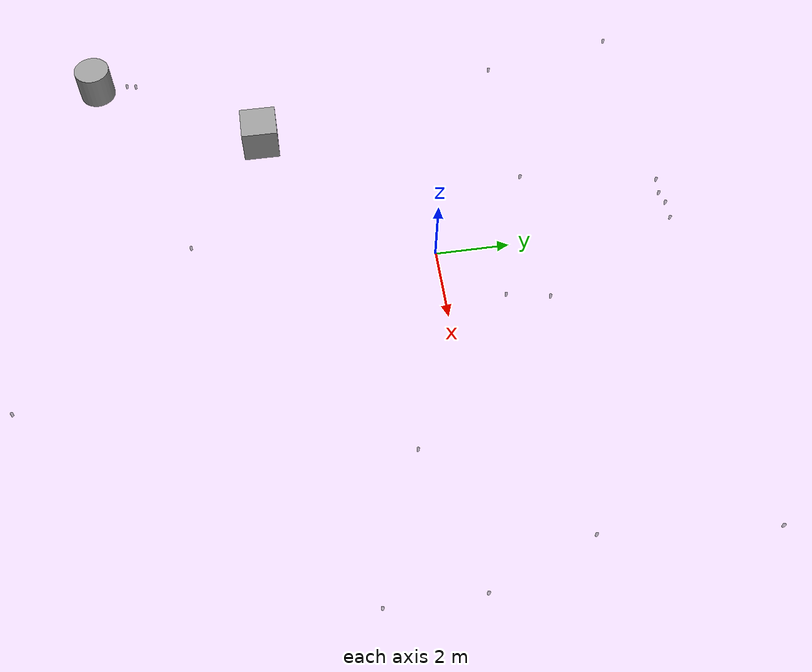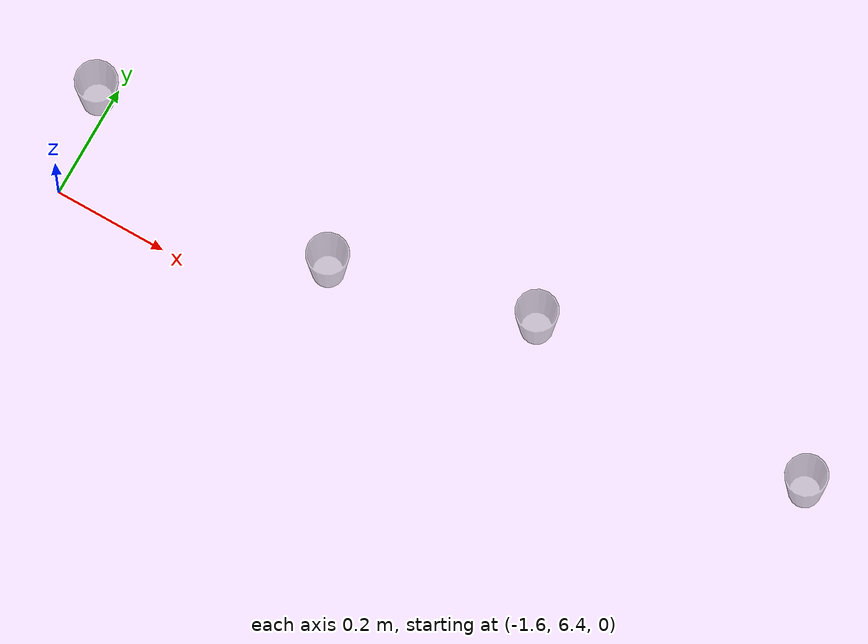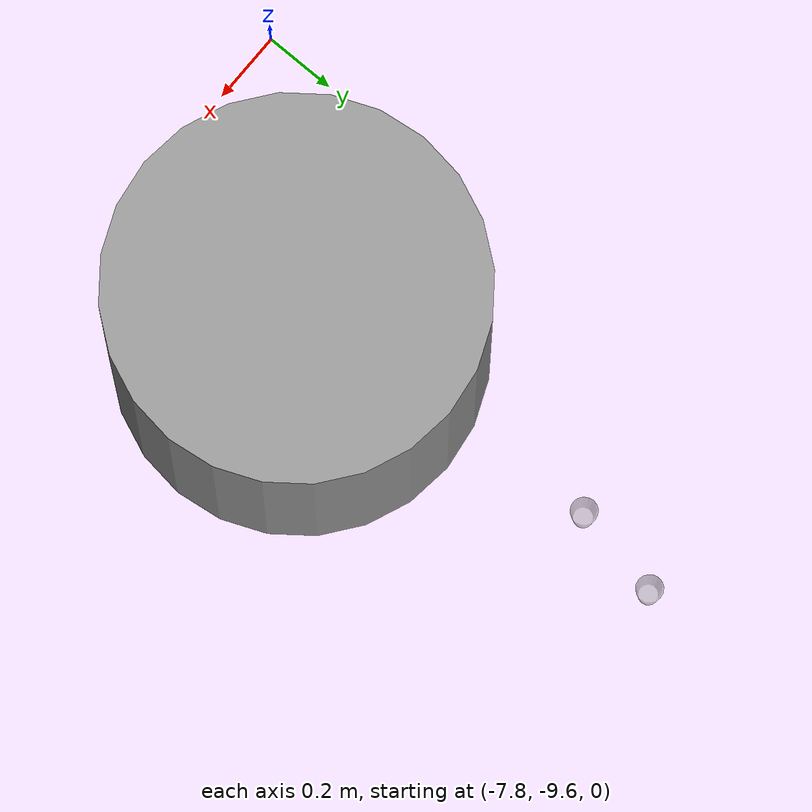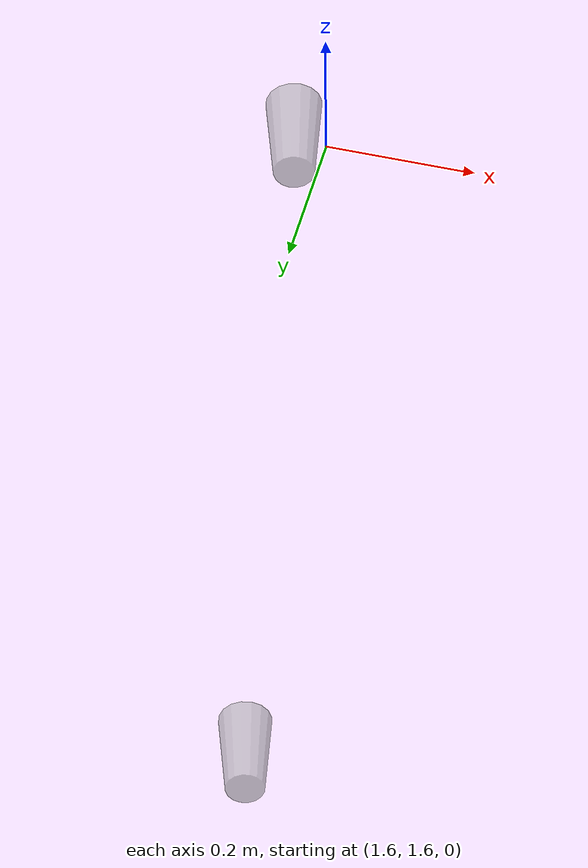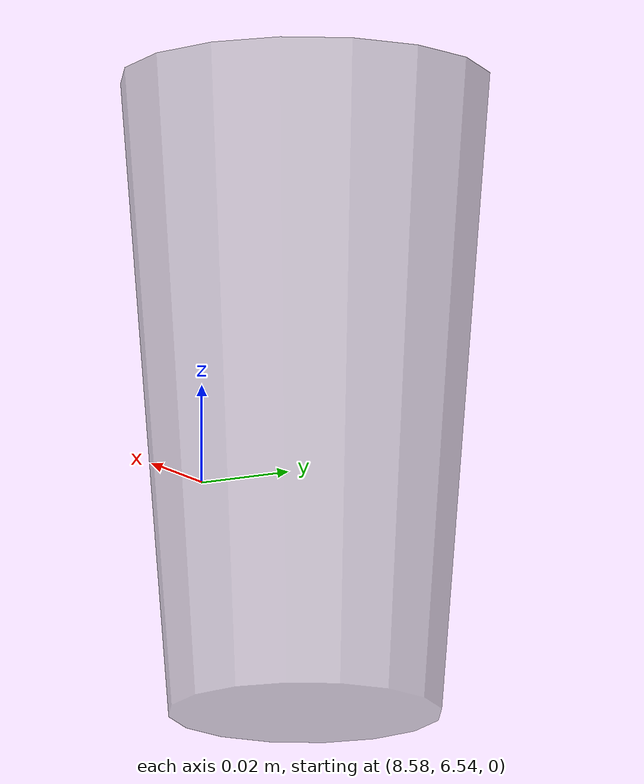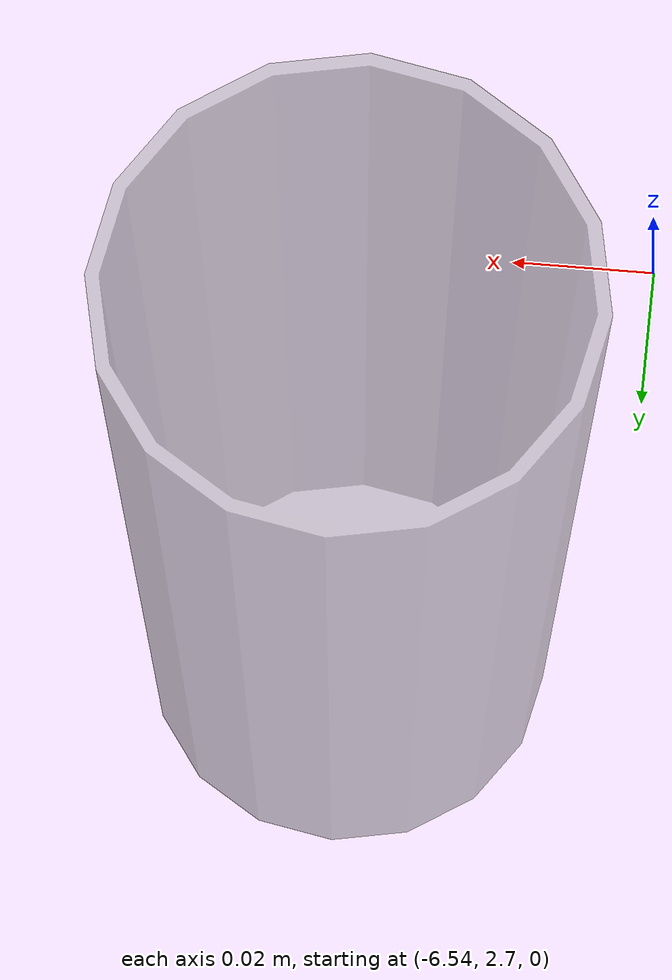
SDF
<?xml version='1.0'?>
<sdf version='1.7'>
  <model name='plastic_cups_added'>
    <link name='link_0'>
      <inertial>
        <mass>1</mass>
        <inertia>
          <ixx>0.166667</ixx>
          <ixy>0</ixy>
          <ixz>0</ixz>
          <iyy>0.166667</iyy>
          <iyz>0</iyz>
          <izz>0.166667</izz>
        </inertia>
      </inertial>
      <pose>-4.53638 -4.34206 0.45 0 -0 0</pose>
      <visual name='visual_one'>
        <pose>0 0 0 0 -0 0</pose>
        <geometry>
          <box>
            <size>1 1 1</size>
          </box>
        </geometry>
        <material>
          <lighting>1</lighting>
          <script>
            <uri>file://media/materials/scripts/gazebo.material</uri>
            <name>Gazebo/Grey</name>
          </script>
          <shader type='pixel'/>
        </material>
        <transparency>0</transparency>
        <cast_shadows>1</cast_shadows>
      </visual>
      <collision name='collision_one'>
        <laser_retro>0</laser_retro>
        <max_contacts>10</max_contacts>
        <pose>0 0 0 0 -0 0</pose>
        <geometry>
          <box>
            <size>1 1 1</size>
          </box>
        </geometry>
        <surface>
          <friction>
            <ode>
              <mu>1</mu>
              <mu2>1</mu2>
              <fdir1>0 0 0</fdir1>
              <slip1>0</slip1>
              <slip2>0</slip2>
            </ode>
            <torsional>
              <coefficient>1</coefficient>
              <patch_radius>0</patch_radius>
              <surface_radius>0</surface_radius>
              <use_patch_radius>1</use_patch_radius>
              <ode>
                <slip>0</slip>
              </ode>
            </torsional>
          </friction>
          <bounce>
            <restitution_coefficient>0</restitution_coefficient>
            <threshold>1e+06</threshold>
          </bounce>
          <contact>
            <collide_without_contact>0</collide_without_contact>
            <collide_without_contact_bitmask>1</collide_without_contact_bitmask>
            <collide_bitmask>1</collide_bitmask>
            <ode>
              <soft_cfm>0</soft_cfm>
              <soft_erp>0.2</soft_erp>
              <kp>1e+13</kp>
              <kd>1</kd>
              <max_vel>0.01</max_vel>
              <min_depth>0</min_depth>
            </ode>
            <bullet>
              <split_impulse>1</split_impulse>
              <split_impulse_penetration_threshold>-0.01</split_impulse_penetration_threshold>
              <soft_cfm>0</soft_cfm>
              <soft_erp>0.2</soft_erp>
              <kp>1e+13</kp>
              <kd>1</kd>
            </bullet>
          </contact>
        </surface>
      </collision>
    </link>
    <link name='link_1'>
      <inertial>
        <mass>1</mass>
        <inertia>
          <ixx>0.145833</ixx>
          <ixy>0</ixy>
          <ixz>0</ixz>
          <iyy>0.145833</iyy>
          <iyz>0</iyz>
          <izz>0.125</izz>
        </inertia>
      </inertial>
      <pose>-7.22742 -9.02066 0.45 0 -0 0</pose>
      <visual name='visual__1'>
        <pose>0 0 0 0 -0 0</pose>
        <geometry>
          <cylinder>
            <radius>0.5</radius>
            <length>1</length>
          </cylinder>
        </geometry>
        <material>
          <lighting>1</lighting>
          <script>
            <uri>file://media/materials/scripts/gazebo.material</uri>
            <name>Gazebo/Grey</name>
          </script>
          <shader type='pixel'/>
        </material>
        <transparency>0</transparency>
        <cast_shadows>1</cast_shadows>
      </visual>
      <collision name='collision__1'>
        <laser_retro>0</laser_retro>
        <max_contacts>10</max_contacts>
        <pose>0 0 0 0 -0 0</pose>
        <geometry>
          <cylinder>
            <radius>0.5</radius>
            <length>1</length>
          </cylinder>
        </geometry>
        <surface>
          <friction>
            <ode>
              <mu>1</mu>
              <mu2>1</mu2>
              <fdir1>0 0 0</fdir1>
              <slip1>0</slip1>
              <slip2>0</slip2>
            </ode>
            <torsional>
              <coefficient>1</coefficient>
              <patch_radius>0</patch_radius>
              <surface_radius>0</surface_radius>
              <use_patch_radius>1</use_patch_radius>
              <ode>
                <slip>0</slip>
              </ode>
            </torsional>
          </friction>
          <bounce>
            <restitution_coefficient>0</restitution_coefficient>
            <threshold>1e+06</threshold>
          </bounce>
          <contact>
            <collide_without_contact>0</collide_without_contact>
            <collide_without_contact_bitmask>1</collide_without_contact_bitmask>
            <collide_bitmask>1</collide_bitmask>
            <ode>
              <soft_cfm>0</soft_cfm>
              <soft_erp>0.2</soft_erp>
              <kp>1e+13</kp>
              <kd>1</kd>
              <max_vel>0.01</max_vel>
              <min_depth>0</min_depth>
            </ode>
            <bullet>
              <split_impulse>1</split_impulse>
              <split_impulse_penetration_threshold>-0.01</split_impulse_penetration_threshold>
              <soft_cfm>0</soft_cfm>
              <soft_erp>0.2</soft_erp>
              <kp>1e+13</kp>
              <kd>1</kd>
            </bullet>
          </contact>
        </surface>
      </collision>
    </link>
    <model name='plastic_cup'>
      <link name='link_one'>
        <pose>0 0 0.065 0 -0 0</pose>
        <inertial>
          <mass>0.0599</mass>
          <inertia>
            <ixx>0.000302896</ixx>
            <ixy>0</ixy>
            <ixz>0</ixz>
            <iyy>0.000302896</iyy>
            <iyz>0</iyz>
            <izz>3.28764e-05</izz>
          </inertia>
        </inertial>
        <collision name='collision__2'>
          <geometry>
            <mesh>
              <uri>model://plastic_cup/meshes/plastic_cup.dae</uri>
            </mesh>
          </geometry>
          <surface>
            <contact>
              <poissons_ratio>0.35</poissons_ratio>
              <elastic_modulus>3.10264e+09</elastic_modulus>
              <ode>
                <kp>100000</kp>
                <kd>100</kd>
                <max_vel>100</max_vel>
                <min_depth>0.001</min_depth>
              </ode>
            </contact>
            <friction>
              <torsional>
                <coefficient>1</coefficient>
                <use_patch_radius>0</use_patch_radius>
                <surface_radius>0.01</surface_radius>
              </torsional>
            </friction>
          </surface>
        </collision>
        <visual name='visual__2'>
          <geometry>
            <mesh>
              <uri>model://plastic_cup/meshes/plastic_cup.dae</uri>
            </mesh>
          </geometry>
          <material>
            <script>
              <uri>file://media/materials/scripts/gazebo.material</uri>
              <name>Gazebo/GreyTransparent</name>
            </script>
          </material>
        </visual>
      </link>
      <pose>-7.35518 -8.17299 -0.05 0 -0 0</pose>
    </model>
    <model name='plastic_cup_0'>
      <link name='link__1'>
        <pose>0 0 0.065 0 -0 0</pose>
        <inertial>
          <mass>0.0599</mass>
          <inertia>
            <ixx>0.000302896</ixx>
            <ixy>0</ixy>
            <ixz>0</ixz>
            <iyy>0.000302896</iyy>
            <iyz>0</iyz>
            <izz>3.28764e-05</izz>
          </inertia>
        </inertial>
        <collision name='collision__3'>
          <geometry>
            <mesh>
              <uri>model://plastic_cup/meshes/plastic_cup.dae</uri>
            </mesh>
          </geometry>
          <surface>
            <contact>
              <poissons_ratio>0.35</poissons_ratio>
              <elastic_modulus>3.10264e+09</elastic_modulus>
              <ode>
                <kp>100000</kp>
                <kd>100</kd>
                <max_vel>100</max_vel>
                <min_depth>0.001</min_depth>
              </ode>
            </contact>
            <friction>
              <torsional>
                <coefficient>1</coefficient>
                <use_patch_radius>0</use_patch_radius>
                <surface_radius>0.01</surface_radius>
              </torsional>
            </friction>
          </surface>
        </collision>
        <visual name='visual__3'>
          <geometry>
            <mesh>
              <uri>model://plastic_cup/meshes/plastic_cup.dae</uri>
            </mesh>
          </geometry>
          <material>
            <script>
              <uri>file://media/materials/scripts/gazebo.material</uri>
              <name>Gazebo/GreyTransparent</name>
            </script>
          </material>
        </visual>
      </link>
      <pose>-7.30776 -7.91282 -0.05 0 -0 0</pose>
    </model>
    <model name='plastic_cup_1'>
      <link name='link__2'>
        <pose>0 0 0.065 0 -0 0</pose>
        <inertial>
          <mass>0.0599</mass>
          <inertia>
            <ixx>0.000302896</ixx>
            <ixy>0</ixy>
            <ixz>0</ixz>
            <iyy>0.000302896</iyy>
            <iyz>0</iyz>
            <izz>3.28764e-05</izz>
          </inertia>
        </inertial>
        <collision name='collision__4'>
          <geometry>
            <mesh>
              <uri>model://plastic_cup/meshes/plastic_cup.dae</uri>
            </mesh>
          </geometry>
          <surface>
            <contact>
              <poissons_ratio>0.35</poissons_ratio>
              <elastic_modulus>3.10264e+09</elastic_modulus>
              <ode>
                <kp>100000</kp>
                <kd>100</kd>
                <max_vel>100</max_vel>
                <min_depth>0.001</min_depth>
              </ode>
            </contact>
            <friction>
              <torsional>
                <coefficient>1</coefficient>
                <use_patch_radius>0</use_patch_radius>
                <surface_radius>0.01</surface_radius>
              </torsional>
            </friction>
          </surface>
        </collision>
        <visual name='visual__4'>
          <geometry>
            <mesh>
              <uri>model://plastic_cup/meshes/plastic_cup.dae</uri>
            </mesh>
          </geometry>
          <material>
            <script>
              <uri>file://media/materials/scripts/gazebo.material</uri>
              <name>Gazebo/GreyTransparent</name>
            </script>
          </material>
        </visual>
      </link>
      <pose>-1.0894 -6.4977 -0.05 0 -0 0</pose>
    </model>
    <model name='plastic_cup_10'>
      <link name='link__3'>
        <pose>0 0 0.065 0 -0 0</pose>
        <inertial>
          <mass>0.0599</mass>
          <inertia>
            <ixx>0.000302896</ixx>
            <ixy>0</ixy>
            <ixz>0</ixz>
            <iyy>0.000302896</iyy>
            <iyz>0</iyz>
            <izz>3.28764e-05</izz>
          </inertia>
        </inertial>
        <collision name='collision__5'>
          <geometry>
            <mesh>
              <uri>model://plastic_cup/meshes/plastic_cup.dae</uri>
            </mesh>
          </geometry>
          <surface>
            <contact>
              <poissons_ratio>0.35</poissons_ratio>
              <elastic_modulus>3.10264e+09</elastic_modulus>
              <ode>
                <kp>100000</kp>
                <kd>100</kd>
                <max_vel>100</max_vel>
                <min_depth>0.001</min_depth>
              </ode>
            </contact>
            <friction>
              <torsional>
                <coefficient>1</coefficient>
                <use_patch_radius>0</use_patch_radius>
                <surface_radius>0.01</surface_radius>
              </torsional>
            </friction>
          </surface>
        </collision>
        <visual name='visual__5'>
          <geometry>
            <mesh>
              <uri>model://plastic_cup/meshes/plastic_cup.dae</uri>
            </mesh>
          </geometry>
          <material>
            <script>
              <uri>file://media/materials/scripts/gazebo.material</uri>
              <name>Gazebo/GreyTransparent</name>
            </script>
          </material>
        </visual>
      </link>
      <pose>-1.63094 6.5734 -0.05 0 -0 0</pose>
    </model>
    <model name='plastic_cup_11'>
      <link name='link__4'>
        <pose>0 0 0.065 0 -0 0</pose>
        <inertial>
          <mass>0.0599</mass>
          <inertia>
            <ixx>0.000302896</ixx>
            <ixy>0</ixy>
            <ixz>0</ixz>
            <iyy>0.000302896</iyy>
            <iyz>0</iyz>
            <izz>3.28764e-05</izz>
          </inertia>
        </inertial>
        <collision name='collision__6'>
          <geometry>
            <mesh>
              <uri>model://plastic_cup/meshes/plastic_cup.dae</uri>
            </mesh>
          </geometry>
          <surface>
            <contact>
              <poissons_ratio>0.35</poissons_ratio>
              <elastic_modulus>3.10264e+09</elastic_modulus>
              <ode>
                <kp>100000</kp>
                <kd>100</kd>
                <max_vel>100</max_vel>
                <min_depth>0.001</min_depth>
              </ode>
            </contact>
            <friction>
              <torsional>
                <coefficient>1</coefficient>
                <use_patch_radius>0</use_patch_radius>
                <surface_radius>0.01</surface_radius>
              </torsional>
            </friction>
          </surface>
        </collision>
        <visual name='visual__6'>
          <geometry>
            <mesh>
              <uri>model://plastic_cup/meshes/plastic_cup.dae</uri>
            </mesh>
          </geometry>
          <material>
            <script>
              <uri>file://media/materials/scripts/gazebo.material</uri>
              <name>Gazebo/GreyTransparent</name>
            </script>
          </material>
        </visual>
      </link>
      <pose>-7.22075 6.50788 -0.05 0 -0 0</pose>
    </model>
    <model name='plastic_cup_12'>
      <link name='link__5'>
        <pose>0 0 0.065 0 -0 0</pose>
        <inertial>
          <mass>0.0599</mass>
          <inertia>
            <ixx>0.000302896</ixx>
            <ixy>0</ixy>
            <ixz>0</ixz>
            <iyy>0.000302896</iyy>
            <iyz>0</iyz>
            <izz>3.28764e-05</izz>
          </inertia>
        </inertial>
        <collision name='collision__7'>
          <geometry>
            <mesh>
              <uri>model://plastic_cup/meshes/plastic_cup.dae</uri>
            </mesh>
          </geometry>
          <surface>
            <contact>
              <poissons_ratio>0.35</poissons_ratio>
              <elastic_modulus>3.10264e+09</elastic_modulus>
              <ode>
                <kp>100000</kp>
                <kd>100</kd>
                <max_vel>100</max_vel>
                <min_depth>0.001</min_depth>
              </ode>
            </contact>
            <friction>
              <torsional>
                <coefficient>1</coefficient>
                <use_patch_radius>0</use_patch_radius>
                <surface_radius>0.01</surface_radius>
              </torsional>
            </friction>
          </surface>
        </collision>
        <visual name='visual__7'>
          <geometry>
            <mesh>
              <uri>model://plastic_cup/meshes/plastic_cup.dae</uri>
            </mesh>
          </geometry>
          <material>
            <script>
              <uri>file://media/materials/scripts/gazebo.material</uri>
              <name>Gazebo/GreyTransparent</name>
            </script>
          </material>
        </visual>
      </link>
      <pose>-6.50018 2.73036 -0.05 0 -0 0</pose>
    </model>
    <model name='plastic_cup_13'>
      <link name='link__6'>
        <pose>0 0 0.065 0 -0 0</pose>
        <inertial>
          <mass>0.0599</mass>
          <inertia>
            <ixx>0.000302896</ixx>
            <ixy>0</ixy>
            <ixz>0</ixz>
            <iyy>0.000302896</iyy>
            <iyz>0</iyz>
            <izz>3.28764e-05</izz>
          </inertia>
        </inertial>
        <collision name='collision__8'>
          <geometry>
            <mesh>
              <uri>model://plastic_cup/meshes/plastic_cup.dae</uri>
            </mesh>
          </geometry>
          <surface>
            <contact>
              <poissons_ratio>0.35</poissons_ratio>
              <elastic_modulus>3.10264e+09</elastic_modulus>
              <ode>
                <kp>100000</kp>
                <kd>100</kd>
                <max_vel>100</max_vel>
                <min_depth>0.001</min_depth>
              </ode>
            </contact>
            <friction>
              <torsional>
                <coefficient>1</coefficient>
                <use_patch_radius>0</use_patch_radius>
                <surface_radius>0.01</surface_radius>
              </torsional>
            </friction>
          </surface>
        </collision>
        <visual name='visual__8'>
          <geometry>
            <mesh>
              <uri>model://plastic_cup/meshes/plastic_cup.dae</uri>
            </mesh>
          </geometry>
          <material>
            <script>
              <uri>file://media/materials/scripts/gazebo.material</uri>
              <name>Gazebo/GreyTransparent</name>
            </script>
          </material>
        </visual>
      </link>
      <pose>-2.26415 2.79588 -0.05 0 -0 0</pose>
    </model>
    <model name='plastic_cup_14'>
      <link name='link__7'>
        <pose>0 0 0.065 0 -0 0</pose>
        <inertial>
          <mass>0.0599</mass>
          <inertia>
            <ixx>0.000302896</ixx>
            <ixy>0</ixy>
            <ixz>0</ixz>
            <iyy>0.000302896</iyy>
            <iyz>0</iyz>
            <izz>3.28764e-05</izz>
          </inertia>
        </inertial>
        <collision name='collision__9'>
          <geometry>
            <mesh>
              <uri>model://plastic_cup/meshes/plastic_cup.dae</uri>
            </mesh>
          </geometry>
          <surface>
            <contact>
              <poissons_ratio>0.35</poissons_ratio>
              <elastic_modulus>3.10264e+09</elastic_modulus>
              <ode>
                <kp>100000</kp>
                <kd>100</kd>
                <max_vel>100</max_vel>
                <min_depth>0.001</min_depth>
              </ode>
            </contact>
            <friction>
              <torsional>
                <coefficient>1</coefficient>
                <use_patch_radius>0</use_patch_radius>
                <surface_radius>0.01</surface_radius>
              </torsional>
            </friction>
          </surface>
        </collision>
        <visual name='visual__9'>
          <geometry>
            <mesh>
              <uri>model://plastic_cup/meshes/plastic_cup.dae</uri>
            </mesh>
          </geometry>
          <material>
            <script>
              <uri>file://media/materials/scripts/gazebo.material</uri>
              <name>Gazebo/GreyTransparent</name>
            </script>
          </material>
        </visual>
      </link>
      <pose>1.7754 2.73036 -0.05 0 -0 0</pose>
    </model>
    <model name='plastic_cup_15'>
      <link name='link__8'>
        <pose>0 0 0.065 0 -0 0</pose>
        <inertial>
          <mass>0.0599</mass>
          <inertia>
            <ixx>0.000302896</ixx>
            <ixy>0</ixy>
            <ixz>0</ixz>
            <iyy>0.000302896</iyy>
            <iyz>0</iyz>
            <izz>3.28764e-05</izz>
          </inertia>
        </inertial>
        <collision name='collision__10'>
          <geometry>
            <mesh>
              <uri>model://plastic_cup/meshes/plastic_cup.dae</uri>
            </mesh>
          </geometry>
          <surface>
            <contact>
              <poissons_ratio>0.35</poissons_ratio>
              <elastic_modulus>3.10264e+09</elastic_modulus>
              <ode>
                <kp>100000</kp>
                <kd>100</kd>
                <max_vel>100</max_vel>
                <min_depth>0.001</min_depth>
              </ode>
            </contact>
            <friction>
              <torsional>
                <coefficient>1</coefficient>
                <use_patch_radius>0</use_patch_radius>
                <surface_radius>0.01</surface_radius>
              </torsional>
            </friction>
          </surface>
        </collision>
        <visual name='visual__10'>
          <geometry>
            <mesh>
              <uri>model://plastic_cup/meshes/plastic_cup.dae</uri>
            </mesh>
          </geometry>
          <material>
            <script>
              <uri>file://media/materials/scripts/gazebo.material</uri>
              <name>Gazebo/GreyTransparent</name>
            </script>
          </material>
        </visual>
      </link>
      <pose>1.55703 1.59494 -0.05 0 -0 0</pose>
    </model>
    <model name='plastic_cup_16'>
      <link name='link__9'>
        <pose>0 0 0.065 0 -0 0</pose>
        <inertial>
          <mass>0.0599</mass>
          <inertia>
            <ixx>0.000302896</ixx>
            <ixy>0</ixy>
            <ixz>0</ixz>
            <iyy>0.000302896</iyy>
            <iyz>0</iyz>
            <izz>3.28764e-05</izz>
          </inertia>
        </inertial>
        <collision name='collision__11'>
          <geometry>
            <mesh>
              <uri>model://plastic_cup/meshes/plastic_cup.dae</uri>
            </mesh>
          </geometry>
          <surface>
            <contact>
              <poissons_ratio>0.35</poissons_ratio>
              <elastic_modulus>3.10264e+09</elastic_modulus>
              <ode>
                <kp>100000</kp>
                <kd>100</kd>
                <max_vel>100</max_vel>
                <min_depth>0.001</min_depth>
              </ode>
            </contact>
            <friction>
              <torsional>
                <coefficient>1</coefficient>
                <use_patch_radius>0</use_patch_radius>
                <surface_radius>0.01</surface_radius>
              </torsional>
            </friction>
          </surface>
        </collision>
        <visual name='visual__11'>
          <geometry>
            <mesh>
              <uri>model://plastic_cup/meshes/plastic_cup.dae</uri>
            </mesh>
          </geometry>
          <material>
            <script>
              <uri>file://media/materials/scripts/gazebo.material</uri>
              <name>Gazebo/GreyTransparent</name>
            </script>
          </material>
        </visual>
      </link>
      <pose>3.27314 -11.0046 -0.05 0 -0 0</pose>
    </model>
    <model name='plastic_cup_2'>
      <link name='link__10'>
        <pose>0 0 0.065 0 -0 0</pose>
        <inertial>
          <mass>0.0599</mass>
          <inertia>
            <ixx>0.000302896</ixx>
            <ixy>0</ixy>
            <ixz>0</ixz>
            <iyy>0.000302896</iyy>
            <iyz>0</iyz>
            <izz>3.28764e-05</izz>
          </inertia>
        </inertial>
        <collision name='collision__12'>
          <geometry>
            <mesh>
              <uri>model://plastic_cup/meshes/plastic_cup.dae</uri>
            </mesh>
          </geometry>
          <surface>
            <contact>
              <poissons_ratio>0.35</poissons_ratio>
              <elastic_modulus>3.10264e+09</elastic_modulus>
              <ode>
                <kp>100000</kp>
                <kd>100</kd>
                <max_vel>100</max_vel>
                <min_depth>0.001</min_depth>
              </ode>
            </contact>
            <friction>
              <torsional>
                <coefficient>1</coefficient>
                <use_patch_radius>0</use_patch_radius>
                <surface_radius>0.01</surface_radius>
              </torsional>
            </friction>
          </surface>
        </collision>
        <visual name='visual__12'>
          <geometry>
            <mesh>
              <uri>model://plastic_cup/meshes/plastic_cup.dae</uri>
            </mesh>
          </geometry>
          <material>
            <script>
              <uri>file://media/materials/scripts/gazebo.material</uri>
              <name>Gazebo/GreyTransparent</name>
            </script>
          </material>
        </visual>
      </link>
      <pose>5.57371 -1.38312 -0.05 0 -0 0</pose>
    </model>
    <model name='plastic_cup_3'>
      <link name='link__11'>
        <pose>0 0 0.065 0 -0 0</pose>
        <inertial>
          <mass>0.0599</mass>
          <inertia>
            <ixx>0.000302896</ixx>
            <ixy>0</ixy>
            <ixz>0</ixz>
            <iyy>0.000302896</iyy>
            <iyz>0</iyz>
            <izz>3.28764e-05</izz>
          </inertia>
        </inertial>
        <collision name='collision__13'>
          <geometry>
            <mesh>
              <uri>model://plastic_cup/meshes/plastic_cup.dae</uri>
            </mesh>
          </geometry>
          <surface>
            <contact>
              <poissons_ratio>0.35</poissons_ratio>
              <elastic_modulus>3.10264e+09</elastic_modulus>
              <ode>
                <kp>100000</kp>
                <kd>100</kd>
                <max_vel>100</max_vel>
                <min_depth>0.001</min_depth>
              </ode>
            </contact>
            <friction>
              <torsional>
                <coefficient>1</coefficient>
                <use_patch_radius>0</use_patch_radius>
                <surface_radius>0.01</surface_radius>
              </torsional>
            </friction>
          </surface>
        </collision>
        <visual name='visual__13'>
          <geometry>
            <mesh>
              <uri>model://plastic_cup/meshes/plastic_cup.dae</uri>
            </mesh>
          </geometry>
          <material>
            <script>
              <uri>file://media/materials/scripts/gazebo.material</uri>
              <name>Gazebo/GreyTransparent</name>
            </script>
          </material>
        </visual>
      </link>
      <pose>8.21678 2.29365 -0.05 0 -0 0</pose>
    </model>
    <model name='plastic_cup_4'>
      <link name='link__12'>
        <pose>0 0 0.065 0 -0 0</pose>
        <inertial>
          <mass>0.0599</mass>
          <inertia>
            <ixx>0.000302896</ixx>
            <ixy>0</ixy>
            <ixz>0</ixz>
            <iyy>0.000302896</iyy>
            <iyz>0</iyz>
            <izz>3.28764e-05</izz>
          </inertia>
        </inertial>
        <collision name='collision__14'>
          <geometry>
            <mesh>
              <uri>model://plastic_cup/meshes/plastic_cup.dae</uri>
            </mesh>
          </geometry>
          <surface>
            <contact>
              <poissons_ratio>0.35</poissons_ratio>
              <elastic_modulus>3.10264e+09</elastic_modulus>
              <ode>
                <kp>100000</kp>
                <kd>100</kd>
                <max_vel>100</max_vel>
                <min_depth>0.001</min_depth>
              </ode>
            </contact>
            <friction>
              <torsional>
                <coefficient>1</coefficient>
                <use_patch_radius>0</use_patch_radius>
                <surface_radius>0.01</surface_radius>
              </torsional>
            </friction>
          </surface>
        </collision>
        <visual name='visual__14'>
          <geometry>
            <mesh>
              <uri>model://plastic_cup/meshes/plastic_cup.dae</uri>
            </mesh>
          </geometry>
          <material>
            <script>
              <uri>file://media/materials/scripts/gazebo.material</uri>
              <name>Gazebo/GreyTransparent</name>
            </script>
          </material>
        </visual>
      </link>
      <pose>9.17755 -0.392081 -0.05 0 -0 0</pose>
    </model>
    <model name='plastic_cup_5'>
      <link name='link__13'>
        <pose>0 0 0.065 0 -0 0</pose>
        <inertial>
          <mass>0.0599</mass>
          <inertia>
            <ixx>0.000302896</ixx>
            <ixy>0</ixy>
            <ixz>0</ixz>
            <iyy>0.000302896</iyy>
            <iyz>0</iyz>
            <izz>3.28764e-05</izz>
          </inertia>
        </inertial>
        <collision name='collision__15'>
          <geometry>
            <mesh>
              <uri>model://plastic_cup/meshes/plastic_cup.dae</uri>
            </mesh>
          </geometry>
          <surface>
            <contact>
              <poissons_ratio>0.35</poissons_ratio>
              <elastic_modulus>3.10264e+09</elastic_modulus>
              <ode>
                <kp>100000</kp>
                <kd>100</kd>
                <max_vel>100</max_vel>
                <min_depth>0.001</min_depth>
              </ode>
            </contact>
            <friction>
              <torsional>
                <coefficient>1</coefficient>
                <use_patch_radius>0</use_patch_radius>
                <surface_radius>0.01</surface_radius>
              </torsional>
            </friction>
          </surface>
        </collision>
        <visual name='visual__15'>
          <geometry>
            <mesh>
              <uri>model://plastic_cup/meshes/plastic_cup.dae</uri>
            </mesh>
          </geometry>
          <material>
            <script>
              <uri>file://media/materials/scripts/gazebo.material</uri>
              <name>Gazebo/GreyTransparent</name>
            </script>
          </material>
        </visual>
      </link>
      <pose>9.17755 -2.75029 -0.05 0 -0 0</pose>
    </model>
    <model name='plastic_cup_6'>
      <link name='link__14'>
        <pose>0 0 0.065 0 -0 0</pose>
        <inertial>
          <mass>0.0599</mass>
          <inertia>
            <ixx>0.000302896</ixx>
            <ixy>0</ixy>
            <ixz>0</ixz>
            <iyy>0.000302896</iyy>
            <iyz>0</iyz>
            <izz>3.28764e-05</izz>
          </inertia>
        </inertial>
        <collision name='collision__16'>
          <geometry>
            <mesh>
              <uri>model://plastic_cup/meshes/plastic_cup.dae</uri>
            </mesh>
          </geometry>
          <surface>
            <contact>
              <poissons_ratio>0.35</poissons_ratio>
              <elastic_modulus>3.10264e+09</elastic_modulus>
              <ode>
                <kp>100000</kp>
                <kd>100</kd>
                <max_vel>100</max_vel>
                <min_depth>0.001</min_depth>
              </ode>
            </contact>
            <friction>
              <torsional>
                <coefficient>1</coefficient>
                <use_patch_radius>0</use_patch_radius>
                <surface_radius>0.01</surface_radius>
              </torsional>
            </friction>
          </surface>
        </collision>
        <visual name='visual__16'>
          <geometry>
            <mesh>
              <uri>model://plastic_cup/meshes/plastic_cup.dae</uri>
            </mesh>
          </geometry>
          <material>
            <script>
              <uri>file://media/materials/scripts/gazebo.material</uri>
              <name>Gazebo/GreyTransparent</name>
            </script>
          </material>
        </visual>
      </link>
      <pose>8.60984 6.5734 -0.05 0 -0 0</pose>
    </model>
    <model name='plastic_cup_7'>
      <link name='link__15'>
        <pose>0 0 0.065 0 -0 0</pose>
        <inertial>
          <mass>0.0599</mass>
          <inertia>
            <ixx>0.000302896</ixx>
            <ixy>0</ixy>
            <ixz>0</ixz>
            <iyy>0.000302896</iyy>
            <iyz>0</iyz>
            <izz>3.28764e-05</izz>
          </inertia>
        </inertial>
        <collision name='collision__17'>
          <geometry>
            <mesh>
              <uri>model://plastic_cup/meshes/plastic_cup.dae</uri>
            </mesh>
          </geometry>
          <surface>
            <contact>
              <poissons_ratio>0.35</poissons_ratio>
              <elastic_modulus>3.10264e+09</elastic_modulus>
              <ode>
                <kp>100000</kp>
                <kd>100</kd>
                <max_vel>100</max_vel>
                <min_depth>0.001</min_depth>
              </ode>
            </contact>
            <friction>
              <torsional>
                <coefficient>1</coefficient>
                <use_patch_radius>0</use_patch_radius>
                <surface_radius>0.01</surface_radius>
              </torsional>
            </friction>
          </surface>
        </collision>
        <visual name='visual__17'>
          <geometry>
            <mesh>
              <uri>model://plastic_cup/meshes/plastic_cup.dae</uri>
            </mesh>
          </geometry>
          <material>
            <script>
              <uri>file://media/materials/scripts/gazebo.material</uri>
              <name>Gazebo/GreyTransparent</name>
            </script>
          </material>
        </visual>
      </link>
      <pose>-1.15055 6.50786 -0.05 0 -0 0</pose>
    </model>
    <model name='plastic_cup_8'>
      <link name='link__16'>
        <pose>0 0 0.065 0 -0 0</pose>
        <inertial>
          <mass>0.0599</mass>
          <inertia>
            <ixx>0.000302896</ixx>
            <ixy>0</ixy>
            <ixz>0</ixz>
            <iyy>0.000302896</iyy>
            <iyz>0</iyz>
            <izz>3.28764e-05</izz>
          </inertia>
        </inertial>
        <collision name='collision__18'>
          <geometry>
            <mesh>
              <uri>model://plastic_cup/meshes/plastic_cup.dae</uri>
            </mesh>
          </geometry>
          <surface>
            <contact>
              <poissons_ratio>0.35</poissons_ratio>
              <elastic_modulus>3.10264e+09</elastic_modulus>
              <ode>
                <kp>100000</kp>
                <kd>100</kd>
                <max_vel>100</max_vel>
                <min_depth>0.001</min_depth>
              </ode>
            </contact>
            <friction>
              <torsional>
                <coefficient>1</coefficient>
                <use_patch_radius>0</use_patch_radius>
                <surface_radius>0.01</surface_radius>
              </torsional>
            </friction>
          </surface>
        </collision>
        <visual name='visual__18'>
          <geometry>
            <mesh>
              <uri>model://plastic_cup/meshes/plastic_cup.dae</uri>
            </mesh>
          </geometry>
          <material>
            <script>
              <uri>file://media/materials/scripts/gazebo.material</uri>
              <name>Gazebo/GreyTransparent</name>
            </script>
          </material>
        </visual>
      </link>
      <pose>-0.801171 6.59523 -0.05 0 -0 0</pose>
    </model>
    <model name='plastic_cup_9'>
      <link name='link__17'>
        <pose>0 0 0.065 0 -0 0</pose>
        <inertial>
          <mass>0.0599</mass>
          <inertia>
            <ixx>0.000302896</ixx>
            <ixy>0</ixy>
            <ixz>0</ixz>
            <iyy>0.000302896</iyy>
            <iyz>0</iyz>
            <izz>3.28764e-05</izz>
          </inertia>
        </inertial>
        <collision name='collision__19'>
          <geometry>
            <mesh>
              <uri>model://plastic_cup/meshes/plastic_cup.dae</uri>
            </mesh>
          </geometry>
          <surface>
            <contact>
              <poissons_ratio>0.35</poissons_ratio>
              <elastic_modulus>3.10264e+09</elastic_modulus>
              <ode>
                <kp>100000</kp>
                <kd>100</kd>
                <max_vel>100</max_vel>
                <min_depth>0.001</min_depth>
              </ode>
            </contact>
            <friction>
              <torsional>
                <coefficient>1</coefficient>
                <use_patch_radius>0</use_patch_radius>
                <surface_radius>0.01</surface_radius>
              </torsional>
            </friction>
          </surface>
        </collision>
        <visual name='visual__19'>
          <geometry>
            <mesh>
              <uri>model://plastic_cup/meshes/plastic_cup.dae</uri>
            </mesh>
          </geometry>
          <material>
            <script>
              <uri>file://media/materials/scripts/gazebo.material</uri>
              <name>Gazebo/GreyTransparent</name>
            </script>
          </material>
        </visual>
      </link>
      <pose>-0.277147 6.5734 -0.05 0 -0 0</pose>
    </model>
    <static>0</static>
    <allow_auto_disable>1</allow_auto_disable>
  </model>
</sdf>
